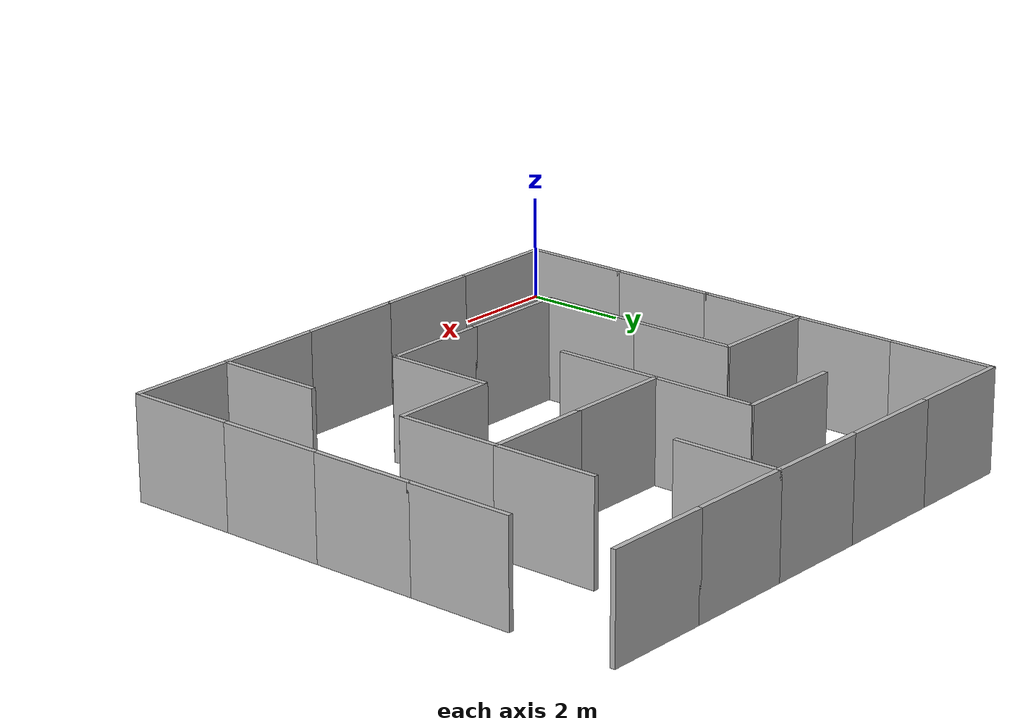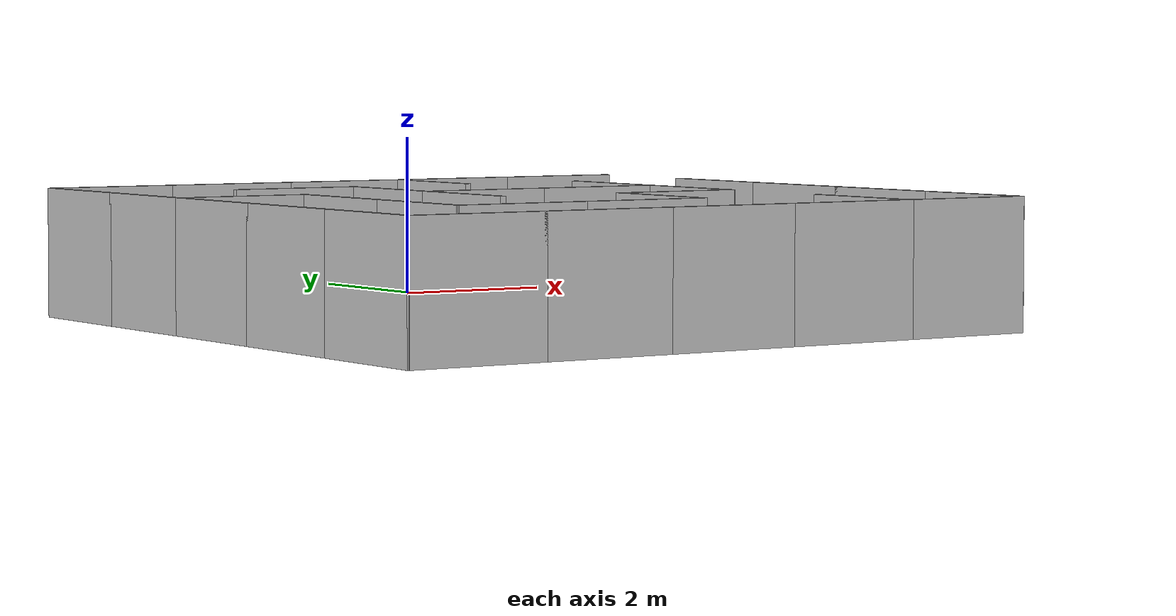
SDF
<sdf version='1.6'>
  <model name='maze'>
    <pose frame=''>0 0 0 0 -0 0</pose>
    <link name='0'>
      <pose frame=''>1.1 0.05 0 0 -0 0</pose>
      <collision name='0_collision'>
        <geometry>
          <box>
            <size>1 1 1</size>
          </box>
        </geometry>
      </collision>
      <visual name='0_visual'>
        <geometry>
          <box>
            <size>2.15 0.1 2</size>
          </box>
        </geometry>
      </visual>
    </link>
    <link name='1'>
      <pose frame=''>0.05 1.1 0 0 -0 0</pose>
      <collision name='1_collision'>
        <geometry>
          <box>
            <size>1 1 1</size>
          </box>
        </geometry>
      </collision>
      <visual name='1_visual'>
        <geometry>
          <box>
            <size>0.1 2.15 2</size>
          </box>
        </geometry>
      </visual>
    </link>
    <link name='2'>
      <pose frame=''>3.2 0.05 0 0 -0 0</pose>
      <collision name='2_collision'>
        <geometry>
          <box>
            <size>1 1 1</size>
          </box>
        </geometry>
      </collision>
      <visual name='2_visual'>
        <geometry>
          <box>
            <size>2.15 0.1 2</size>
          </box>
        </geometry>
      </visual>
    </link>
    <link name='3'>
      <pose frame=''>3.2 2.15 0 0 -0 0</pose>
      <collision name='3_collision'>
        <geometry>
          <box>
            <size>1 1 1</size>
          </box>
        </geometry>
      </collision>
      <visual name='3_visual'>
        <geometry>
          <box>
            <size>2.15 0.1 2</size>
          </box>
        </geometry>
      </visual>
    </link>
    <link name='4'>
      <pose frame=''>5.3 0.05 0 0 -0 0</pose>
      <collision name='4_collision'>
        <geometry>
          <box>
            <size>1 1 1</size>
          </box>
        </geometry>
      </collision>
      <visual name='4_visual'>
        <geometry>
          <box>
            <size>2.15 0.1 2</size>
          </box>
        </geometry>
      </visual>
    </link>
    <link name='5'>
      <pose frame=''>5.3 2.15 0 0 -0 0</pose>
      <collision name='5_collision'>
        <geometry>
          <box>
            <size>1 1 1</size>
          </box>
        </geometry>
      </collision>
      <visual name='5_visual'>
        <geometry>
          <box>
            <size>2.15 0.1 2</size>
          </box>
        </geometry>
      </visual>
    </link>
    <link name='6'>
      <pose frame=''>7.4 0.05 0 0 -0 0</pose>
      <collision name='6_collision'>
        <geometry>
          <box>
            <size>1 1 1</size>
          </box>
        </geometry>
      </collision>
      <visual name='6_visual'>
        <geometry>
          <box>
            <size>2.15 0.1 2</size>
          </box>
        </geometry>
      </visual>
    </link>
    <link name='7'>
      <pose frame=''>8.45 1.1 0 0 -0 0</pose>
      <collision name='7_collision'>
        <geometry>
          <box>
            <size>1 1 1</size>
          </box>
        </geometry>
      </collision>
      <visual name='7_visual'>
        <geometry>
          <box>
            <size>0.1 2.15 2</size>
          </box>
        </geometry>
      </visual>
    </link>
    <link name='8'>
      <pose frame=''>9.5 0.05 0 0 -0 0</pose>
      <collision name='8_collision'>
        <geometry>
          <box>
            <size>1 1 1</size>
          </box>
        </geometry>
      </collision>
      <visual name='8_visual'>
        <geometry>
          <box>
            <size>2.15 0.1 2</size>
          </box>
        </geometry>
      </visual>
    </link>
    <link name='9'>
      <pose frame=''>10.55 1.1 0 0 -0 0</pose>
      <collision name='9_collision'>
        <geometry>
          <box>
            <size>1 1 1</size>
          </box>
        </geometry>
      </collision>
      <visual name='9_visual'>
        <geometry>
          <box>
            <size>0.1 2.15 2</size>
          </box>
        </geometry>
      </visual>
    </link>
    <link name='10'>
      <pose frame=''>2.15 3.2 0 0 -0 0</pose>
      <collision name='10_collision'>
        <geometry>
          <box>
            <size>1 1 1</size>
          </box>
        </geometry>
      </collision>
      <visual name='10_visual'>
        <geometry>
          <box>
            <size>0.1 2.15 2</size>
          </box>
        </geometry>
      </visual>
    </link>
    <link name='11'>
      <pose frame=''>0.05 3.2 0 0 -0 0</pose>
      <collision name='11_collision'>
        <geometry>
          <box>
            <size>1 1 1</size>
          </box>
        </geometry>
      </collision>
      <visual name='11_visual'>
        <geometry>
          <box>
            <size>0.1 2.15 2</size>
          </box>
        </geometry>
      </visual>
    </link>
    <link name='12'>
      <pose frame=''>6.35 3.2 0 0 -0 0</pose>
      <collision name='12_collision'>
        <geometry>
          <box>
            <size>1 1 1</size>
          </box>
        </geometry>
      </collision>
      <visual name='12_visual'>
        <geometry>
          <box>
            <size>0.1 2.15 2</size>
          </box>
        </geometry>
      </visual>
    </link>
    <link name='13'>
      <pose frame=''>7.4 4.25 0 0 -0 0</pose>
      <collision name='13_collision'>
        <geometry>
          <box>
            <size>1 1 1</size>
          </box>
        </geometry>
      </collision>
      <visual name='13_visual'>
        <geometry>
          <box>
            <size>2.15 0.1 2</size>
          </box>
        </geometry>
      </visual>
    </link>
    <link name='14'>
      <pose frame=''>10.55 3.2 0 0 -0 0</pose>
      <collision name='14_collision'>
        <geometry>
          <box>
            <size>1 1 1</size>
          </box>
        </geometry>
      </collision>
      <visual name='14_visual'>
        <geometry>
          <box>
            <size>0.1 2.15 2</size>
          </box>
        </geometry>
      </visual>
    </link>
    <link name='15'>
      <pose frame=''>2.15 5.3 0 0 -0 0</pose>
      <collision name='15_collision'>
        <geometry>
          <box>
            <size>1 1 1</size>
          </box>
        </geometry>
      </collision>
      <visual name='15_visual'>
        <geometry>
          <box>
            <size>0.1 2.15 2</size>
          </box>
        </geometry>
      </visual>
    </link>
    <link name='16'>
      <pose frame=''>1.1 6.35 0 0 -0 0</pose>
      <collision name='16_collision'>
        <geometry>
          <box>
            <size>1 1 1</size>
          </box>
        </geometry>
      </collision>
      <visual name='16_visual'>
        <geometry>
          <box>
            <size>2.15 0.1 2</size>
          </box>
        </geometry>
      </visual>
    </link>
    <link name='17'>
      <pose frame=''>0.05 5.3 0 0 -0 0</pose>
      <collision name='17_collision'>
        <geometry>
          <box>
            <size>1 1 1</size>
          </box>
        </geometry>
      </collision>
      <visual name='17_visual'>
        <geometry>
          <box>
            <size>0.1 2.15 2</size>
          </box>
        </geometry>
      </visual>
    </link>
    <link name='18'>
      <pose frame=''>4.25 5.3 0 0 -0 0</pose>
      <collision name='18_collision'>
        <geometry>
          <box>
            <size>1 1 1</size>
          </box>
        </geometry>
      </collision>
      <visual name='18_visual'>
        <geometry>
          <box>
            <size>0.1 2.15 2</size>
          </box>
        </geometry>
      </visual>
    </link>
    <link name='19'>
      <pose frame=''>5.3 6.35 0 0 -0 0</pose>
      <collision name='19_collision'>
        <geometry>
          <box>
            <size>1 1 1</size>
          </box>
        </geometry>
      </collision>
      <visual name='19_visual'>
        <geometry>
          <box>
            <size>2.15 0.1 2</size>
          </box>
        </geometry>
      </visual>
    </link>
    <link name='20'>
      <pose frame=''>8.45 5.3 0 0 -0 0</pose>
      <collision name='20_collision'>
        <geometry>
          <box>
            <size>1 1 1</size>
          </box>
        </geometry>
      </collision>
      <visual name='20_visual'>
        <geometry>
          <box>
            <size>0.1 2.15 2</size>
          </box>
        </geometry>
      </visual>
    </link>
    <link name='21'>
      <pose frame=''>7.4 6.35 0 0 -0 0</pose>
      <collision name='21_collision'>
        <geometry>
          <box>
            <size>1 1 1</size>
          </box>
        </geometry>
      </collision>
      <visual name='21_visual'>
        <geometry>
          <box>
            <size>2.15 0.1 2</size>
          </box>
        </geometry>
      </visual>
    </link>
    <link name='22'>
      <pose frame=''>10.55 5.3 0 0 -0 0</pose>
      <collision name='22_collision'>
        <geometry>
          <box>
            <size>1 1 1</size>
          </box>
        </geometry>
      </collision>
      <visual name='22_visual'>
        <geometry>
          <box>
            <size>0.1 2.15 2</size>
          </box>
        </geometry>
      </visual>
    </link>
    <link name='23'>
      <pose frame=''>0.05 7.4 0 0 -0 0</pose>
      <collision name='23_collision'>
        <geometry>
          <box>
            <size>1 1 1</size>
          </box>
        </geometry>
      </collision>
      <visual name='23_visual'>
        <geometry>
          <box>
            <size>0.1 2.15 2</size>
          </box>
        </geometry>
      </visual>
    </link>
    <link name='24'>
      <pose frame=''>4.25 7.4 0 0 -0 0</pose>
      <collision name='24_collision'>
        <geometry>
          <box>
            <size>1 1 1</size>
          </box>
        </geometry>
      </collision>
      <visual name='24_visual'>
        <geometry>
          <box>
            <size>0.1 2.15 2</size>
          </box>
        </geometry>
      </visual>
    </link>
    <link name='25'>
      <pose frame=''>3.2 8.45 0 0 -0 0</pose>
      <collision name='25_collision'>
        <geometry>
          <box>
            <size>1 1 1</size>
          </box>
        </geometry>
      </collision>
      <visual name='25_visual'>
        <geometry>
          <box>
            <size>2.15 0.1 2</size>
          </box>
        </geometry>
      </visual>
    </link>
    <link name='26'>
      <pose frame=''>8.45 7.4 0 0 -0 0</pose>
      <collision name='26_collision'>
        <geometry>
          <box>
            <size>1 1 1</size>
          </box>
        </geometry>
      </collision>
      <visual name='26_visual'>
        <geometry>
          <box>
            <size>0.1 2.15 2</size>
          </box>
        </geometry>
      </visual>
    </link>
    <link name='27'>
      <pose frame=''>10.55 7.4 0 0 -0 0</pose>
      <collision name='27_collision'>
        <geometry>
          <box>
            <size>1 1 1</size>
          </box>
        </geometry>
      </collision>
      <visual name='27_visual'>
        <geometry>
          <box>
            <size>0.1 2.15 2</size>
          </box>
        </geometry>
      </visual>
    </link>
    <link name='28'>
      <pose frame=''>1.1 10.55 0 0 -0 0</pose>
      <collision name='28_collision'>
        <geometry>
          <box>
            <size>1 1 1</size>
          </box>
        </geometry>
      </collision>
      <visual name='28_visual'>
        <geometry>
          <box>
            <size>2.15 0.1 2</size>
          </box>
        </geometry>
      </visual>
    </link>
    <link name='29'>
      <pose frame=''>0.05 9.5 0 0 -0 0</pose>
      <collision name='29_collision'>
        <geometry>
          <box>
            <size>1 1 1</size>
          </box>
        </geometry>
      </collision>
      <visual name='29_visual'>
        <geometry>
          <box>
            <size>0.1 2.15 2</size>
          </box>
        </geometry>
      </visual>
    </link>
    <link name='30'>
      <pose frame=''>3.2 10.55 0 0 -0 0</pose>
      <collision name='30_collision'>
        <geometry>
          <box>
            <size>1 1 1</size>
          </box>
        </geometry>
      </collision>
      <visual name='30_visual'>
        <geometry>
          <box>
            <size>2.15 0.1 2</size>
          </box>
        </geometry>
      </visual>
    </link>
    <link name='31'>
      <pose frame=''>6.35 9.5 0 0 -0 0</pose>
      <collision name='31_collision'>
        <geometry>
          <box>
            <size>1 1 1</size>
          </box>
        </geometry>
      </collision>
      <visual name='31_visual'>
        <geometry>
          <box>
            <size>0.1 2.15 2</size>
          </box>
        </geometry>
      </visual>
    </link>
    <link name='32'>
      <pose frame=''>5.3 10.55 0 0 -0 0</pose>
      <collision name='32_collision'>
        <geometry>
          <box>
            <size>1 1 1</size>
          </box>
        </geometry>
      </collision>
      <visual name='32_visual'>
        <geometry>
          <box>
            <size>2.15 0.1 2</size>
          </box>
        </geometry>
      </visual>
    </link>
    <link name='33'>
      <pose frame=''>7.4 10.55 0 0 -0 0</pose>
      <collision name='33_collision'>
        <geometry>
          <box>
            <size>1 1 1</size>
          </box>
        </geometry>
      </collision>
      <visual name='33_visual'>
        <geometry>
          <box>
            <size>2.15 0.1 2</size>
          </box>
        </geometry>
      </visual>
    </link>
    <link name='35'>
      <pose frame=''>9.5 10.55 0 0 -0 0</pose>
      <collision name='35_collision'>
        <geometry>
          <box>
            <size>1 1 1</size>
          </box>
        </geometry>
      </collision>
      <visual name='35_visual'>
        <geometry>
          <box>
            <size>2.15 0.1 2</size>
          </box>
        </geometry>
      </visual>
    </link>
  </model>
</sdf>
